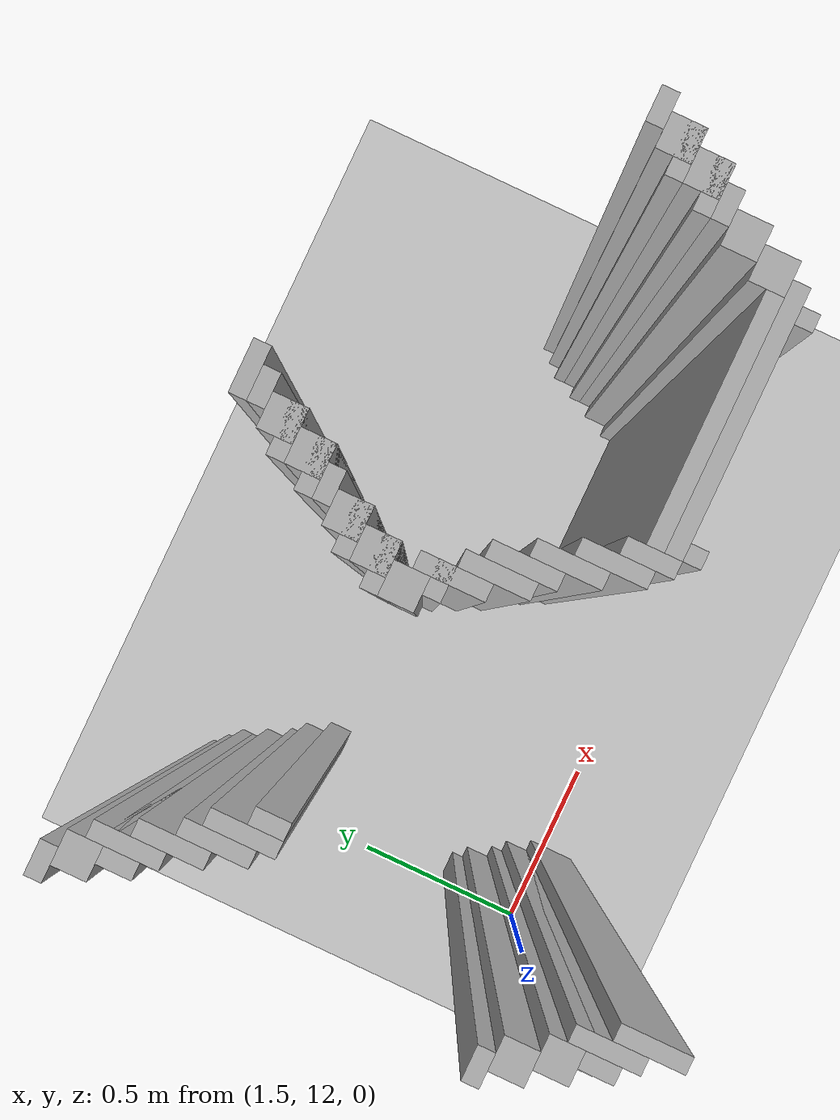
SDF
<sdf version="1.6">
 <world name="slam_world">
  <model name="ground_plane">
   <static>true</static>
   <link name="link">
    <collision name="collision">
     <geometry><plane><normal>0 0 1</normal><size>100 100</size></plane></geometry>
    </collision>
    <visual name="visual">
     <geometry><plane><normal>0 0 1</normal><size>100 100</size></plane></geometry>
     <material>
      <ambient>0.8 0.8 0.8 1</ambient>
      <diffuse>0.8 0.8 0.8 1</diffuse>
      <specular>0.8 0.8 0.8 1</specular>
     </material>
    </visual>
   </link>
  </model>
  <model name="wall_1375">
   <static>true</static>
   <pose>2.488399071925754 13.103248259860788 1.0 0 0 0</pose>
   <link name="link">
    <collision name="collision">
     <geometry><box><size>0.10440835266821345 0.03480278422273782 2.0</size></box></geometry>
    </collision>
    <visual name="visual">
     <geometry><box><size>0.10440835266821345 0.03480278422273782 2.0</size></box></geometry>
     <material><ambient>0.5 0.5 0.5 1</ambient><diffuse>0.7 0.7 0.7 1</diffuse></material>
    </visual>
   </link>
  </model>
  <model name="wall_1388">
   <static>true</static>
   <pose>1.5661252900232019 13.06844547563805 1.0 0 0 0</pose>
   <link name="link">
    <collision name="collision">
     <geometry><box><size>0.06960556844547564 0.03480278422273782 2.0</size></box></geometry>
    </collision>
    <visual name="visual">
     <geometry><box><size>0.06960556844547564 0.03480278422273782 2.0</size></box></geometry>
     <material><ambient>0.5 0.5 0.5 1</ambient><diffuse>0.7 0.7 0.7 1</diffuse></material>
    </visual>
   </link>
  </model>
  <model name="wall_1389">
   <static>true</static>
   <pose>2.470997679814385 13.06844547563805 1.0 0 0 0</pose>
   <link name="link">
    <collision name="collision">
     <geometry><box><size>0.06960556844547564 0.03480278422273782 2.0</size></box></geometry>
    </collision>
    <visual name="visual">
     <geometry><box><size>0.06960556844547564 0.03480278422273782 2.0</size></box></geometry>
     <material><ambient>0.5 0.5 0.5 1</ambient><diffuse>0.7 0.7 0.7 1</diffuse></material>
    </visual>
   </link>
  </model>
  <model name="wall_1401">
   <static>true</static>
   <pose>1.6009280742459395 13.016241299303944 1.0 0 0 0</pose>
   <link name="link">
    <collision name="collision">
     <geometry><box><size>0.06960556844547564 0.06960556844547564 2.0</size></box></geometry>
    </collision>
    <visual name="visual">
     <geometry><box><size>0.06960556844547564 0.06960556844547564 2.0</size></box></geometry>
     <material><ambient>0.5 0.5 0.5 1</ambient><diffuse>0.7 0.7 0.7 1</diffuse></material>
    </visual>
   </link>
  </model>
  <model name="wall_1402">
   <static>true</static>
   <pose>2.436194895591647 13.016241299303944 1.0 0 0 0</pose>
   <link name="link">
    <collision name="collision">
     <geometry><box><size>0.06960556844547564 0.06960556844547564 2.0</size></box></geometry>
    </collision>
    <visual name="visual">
     <geometry><box><size>0.06960556844547564 0.06960556844547564 2.0</size></box></geometry>
     <material><ambient>0.5 0.5 0.5 1</ambient><diffuse>0.7 0.7 0.7 1</diffuse></material>
    </visual>
   </link>
  </model>
  <model name="wall_1416">
   <static>true</static>
   <pose>1.6531322505800463 12.946635730858468 1.0 0 0 0</pose>
   <link name="link">
    <collision name="collision">
     <geometry><box><size>0.03480278422273782 0.13921113689095127 2.0</size></box></geometry>
    </collision>
    <visual name="visual">
     <geometry><box><size>0.03480278422273782 0.13921113689095127 2.0</size></box></geometry>
     <material><ambient>0.5 0.5 0.5 1</ambient><diffuse>0.7 0.7 0.7 1</diffuse></material>
    </visual>
   </link>
  </model>
  <model name="wall_1417">
   <static>true</static>
   <pose>2.4187935034802783 12.998839907192576 1.0 0 0 0</pose>
   <link name="link">
    <collision name="collision">
     <geometry><box><size>0.10440835266821345 0.03480278422273782 2.0</size></box></geometry>
    </collision>
    <visual name="visual">
     <geometry><box><size>0.10440835266821345 0.03480278422273782 2.0</size></box></geometry>
     <material><ambient>0.5 0.5 0.5 1</ambient><diffuse>0.7 0.7 0.7 1</diffuse></material>
    </visual>
   </link>
  </model>
  <model name="wall_1431">
   <static>true</static>
   <pose>1.6357308584686774 12.946635730858468 1.0 0 0 0</pose>
   <link name="link">
    <collision name="collision">
     <geometry><box><size>0.06960556844547564 0.06960556844547564 2.0</size></box></geometry>
    </collision>
    <visual name="visual">
     <geometry><box><size>0.06960556844547564 0.06960556844547564 2.0</size></box></geometry>
     <material><ambient>0.5 0.5 0.5 1</ambient><diffuse>0.7 0.7 0.7 1</diffuse></material>
    </visual>
   </link>
  </model>
  <model name="wall_1432">
   <static>true</static>
   <pose>2.4013921113689096 12.946635730858468 1.0 0 0 0</pose>
   <link name="link">
    <collision name="collision">
     <geometry><box><size>0.06960556844547564 0.06960556844547564 2.0</size></box></geometry>
    </collision>
    <visual name="visual">
     <geometry><box><size>0.06960556844547564 0.06960556844547564 2.0</size></box></geometry>
     <material><ambient>0.5 0.5 0.5 1</ambient><diffuse>0.7 0.7 0.7 1</diffuse></material>
    </visual>
   </link>
  </model>
  <model name="wall_1446">
   <static>true</static>
   <pose>1.6879350348027842 12.877030162412993 1.0 0 0 0</pose>
   <link name="link">
    <collision name="collision">
     <geometry><box><size>0.03480278422273782 0.13921113689095127 2.0</size></box></geometry>
    </collision>
    <visual name="visual">
     <geometry><box><size>0.03480278422273782 0.13921113689095127 2.0</size></box></geometry>
     <material><ambient>0.5 0.5 0.5 1</ambient><diffuse>0.7 0.7 0.7 1</diffuse></material>
    </visual>
   </link>
  </model>
  <model name="wall_1447">
   <static>true</static>
   <pose>2.3839907192575405 12.929234338747099 1.0 0 0 0</pose>
   <link name="link">
    <collision name="collision">
     <geometry><box><size>0.10440835266821345 0.03480278422273782 2.0</size></box></geometry>
    </collision>
    <visual name="visual">
     <geometry><box><size>0.10440835266821345 0.03480278422273782 2.0</size></box></geometry>
     <material><ambient>0.5 0.5 0.5 1</ambient><diffuse>0.7 0.7 0.7 1</diffuse></material>
    </visual>
   </link>
  </model>
  <model name="wall_1460">
   <static>true</static>
   <pose>2.3665893271461718 12.894431554524362 1.0 0 0 0</pose>
   <link name="link">
    <collision name="collision">
     <geometry><box><size>0.06960556844547564 0.03480278422273782 2.0</size></box></geometry>
    </collision>
    <visual name="visual">
     <geometry><box><size>0.06960556844547564 0.03480278422273782 2.0</size></box></geometry>
     <material><ambient>0.5 0.5 0.5 1</ambient><diffuse>0.7 0.7 0.7 1</diffuse></material>
    </visual>
   </link>
  </model>
  <model name="wall_1469">
   <static>true</static>
   <pose>1.722737819025522 12.807424593967516 1.0 0 0 0</pose>
   <link name="link">
    <collision name="collision">
     <geometry><box><size>0.03480278422273782 0.13921113689095127 2.0</size></box></geometry>
    </collision>
    <visual name="visual">
     <geometry><box><size>0.03480278422273782 0.13921113689095127 2.0</size></box></geometry>
     <material><ambient>0.5 0.5 0.5 1</ambient><diffuse>0.7 0.7 0.7 1</diffuse></material>
    </visual>
   </link>
  </model>
  <model name="wall_1470">
   <static>true</static>
   <pose>2.331786542923434 12.842227378190255 1.0 0 0 0</pose>
   <link name="link">
    <collision name="collision">
     <geometry><box><size>0.06960556844547564 0.06960556844547564 2.0</size></box></geometry>
    </collision>
    <visual name="visual">
     <geometry><box><size>0.06960556844547564 0.06960556844547564 2.0</size></box></geometry>
     <material><ambient>0.5 0.5 0.5 1</ambient><diffuse>0.7 0.7 0.7 1</diffuse></material>
    </visual>
   </link>
  </model>
  <model name="wall_1484">
   <static>true</static>
   <pose>1.75754060324826 12.772621809744779 1.0 0 0 0</pose>
   <link name="link">
    <collision name="collision">
     <geometry><box><size>0.03480278422273782 0.13921113689095127 2.0</size></box></geometry>
    </collision>
    <visual name="visual">
     <geometry><box><size>0.03480278422273782 0.13921113689095127 2.0</size></box></geometry>
     <material><ambient>0.5 0.5 0.5 1</ambient><diffuse>0.7 0.7 0.7 1</diffuse></material>
    </visual>
   </link>
  </model>
  <model name="wall_1485">
   <static>true</static>
   <pose>2.3143851508120648 12.824825986078885 1.0 0 0 0</pose>
   <link name="link">
    <collision name="collision">
     <geometry><box><size>0.10440835266821345 0.03480278422273782 2.0</size></box></geometry>
    </collision>
    <visual name="visual">
     <geometry><box><size>0.10440835266821345 0.03480278422273782 2.0</size></box></geometry>
     <material><ambient>0.5 0.5 0.5 1</ambient><diffuse>0.7 0.7 0.7 1</diffuse></material>
    </visual>
   </link>
  </model>
  <model name="wall_1498">
   <static>true</static>
   <pose>2.296983758700696 12.772621809744779 1.0 0 0 0</pose>
   <link name="link">
    <collision name="collision">
     <geometry><box><size>0.06960556844547564 0.06960556844547564 2.0</size></box></geometry>
    </collision>
    <visual name="visual">
     <geometry><box><size>0.06960556844547564 0.06960556844547564 2.0</size></box></geometry>
     <material><ambient>0.5 0.5 0.5 1</ambient><diffuse>0.7 0.7 0.7 1</diffuse></material>
    </visual>
   </link>
  </model>
  <model name="wall_1507">
   <static>true</static>
   <pose>1.7923433874709975 12.737819025522041 1.0 0 0 0</pose>
   <link name="link">
    <collision name="collision">
     <geometry><box><size>0.03480278422273782 0.06960556844547564 2.0</size></box></geometry>
    </collision>
    <visual name="visual">
     <geometry><box><size>0.03480278422273782 0.06960556844547564 2.0</size></box></geometry>
     <material><ambient>0.5 0.5 0.5 1</ambient><diffuse>0.7 0.7 0.7 1</diffuse></material>
    </visual>
   </link>
  </model>
  <model name="wall_1508">
   <static>true</static>
   <pose>2.279582366589327 12.75522041763341 1.0 0 0 0</pose>
   <link name="link">
    <collision name="collision">
     <geometry><box><size>0.10440835266821345 0.03480278422273782 2.0</size></box></geometry>
    </collision>
    <visual name="visual">
     <geometry><box><size>0.10440835266821345 0.03480278422273782 2.0</size></box></geometry>
     <material><ambient>0.5 0.5 0.5 1</ambient><diffuse>0.7 0.7 0.7 1</diffuse></material>
    </visual>
   </link>
  </model>
  <model name="wall_1521">
   <static>true</static>
   <pose>2.262180974477958 12.703016241299304 1.0 0 0 0</pose>
   <link name="link">
    <collision name="collision">
     <geometry><box><size>0.06960556844547564 0.06960556844547564 2.0</size></box></geometry>
    </collision>
    <visual name="visual">
     <geometry><box><size>0.06960556844547564 0.06960556844547564 2.0</size></box></geometry>
     <material><ambient>0.5 0.5 0.5 1</ambient><diffuse>0.7 0.7 0.7 1</diffuse></material>
    </visual>
   </link>
  </model>
  <model name="wall_1531">
   <static>true</static>
   <pose>2.3143851508120648 12.633410672853827 1.0 0 0 0</pose>
   <link name="link">
    <collision name="collision">
     <geometry><box><size>0.03480278422273782 0.13921113689095127 2.0</size></box></geometry>
    </collision>
    <visual name="visual">
     <geometry><box><size>0.03480278422273782 0.13921113689095127 2.0</size></box></geometry>
     <material><ambient>0.5 0.5 0.5 1</ambient><diffuse>0.7 0.7 0.7 1</diffuse></material>
    </visual>
   </link>
  </model>
  <model name="wall_1544">
   <static>true</static>
   <pose>2.296983758700696 12.650812064965196 1.0 0 0 0</pose>
   <link name="link">
    <collision name="collision">
     <geometry><box><size>0.06960556844547564 0.03480278422273782 2.0</size></box></geometry>
    </collision>
    <visual name="visual">
     <geometry><box><size>0.06960556844547564 0.03480278422273782 2.0</size></box></geometry>
     <material><ambient>0.5 0.5 0.5 1</ambient><diffuse>0.7 0.7 0.7 1</diffuse></material>
    </visual>
   </link>
  </model>
  <model name="wall_1545">
   <static>true</static>
   <pose>3.201856148491879 12.650812064965196 1.0 0 0 0</pose>
   <link name="link">
    <collision name="collision">
     <geometry><box><size>0.06960556844547564 0.03480278422273782 2.0</size></box></geometry>
    </collision>
    <visual name="visual">
     <geometry><box><size>0.06960556844547564 0.03480278422273782 2.0</size></box></geometry>
     <material><ambient>0.5 0.5 0.5 1</ambient><diffuse>0.7 0.7 0.7 1</diffuse></material>
    </visual>
   </link>
  </model>
  <model name="wall_1556">
   <static>true</static>
   <pose>2.3491879350348026 12.563805104408353 1.0 0 0 0</pose>
   <link name="link">
    <collision name="collision">
     <geometry><box><size>0.03480278422273782 0.13921113689095127 2.0</size></box></geometry>
    </collision>
    <visual name="visual">
     <geometry><box><size>0.03480278422273782 0.13921113689095127 2.0</size></box></geometry>
     <material><ambient>0.5 0.5 0.5 1</ambient><diffuse>0.7 0.7 0.7 1</diffuse></material>
    </visual>
   </link>
  </model>
  <model name="wall_1557">
   <static>true</static>
   <pose>3.167053364269141 12.59860788863109 1.0 0 0 0</pose>
   <link name="link">
    <collision name="collision">
     <geometry><box><size>0.06960556844547564 0.06960556844547564 2.0</size></box></geometry>
    </collision>
    <visual name="visual">
     <geometry><box><size>0.06960556844547564 0.06960556844547564 2.0</size></box></geometry>
     <material><ambient>0.5 0.5 0.5 1</ambient><diffuse>0.7 0.7 0.7 1</diffuse></material>
    </visual>
   </link>
  </model>
  <model name="wall_1569">
   <static>true</static>
   <pose>2.3839907192575405 12.529002320185615 1.0 0 0 0</pose>
   <link name="link">
    <collision name="collision">
     <geometry><box><size>0.03480278422273782 0.13921113689095127 2.0</size></box></geometry>
    </collision>
    <visual name="visual">
     <geometry><box><size>0.03480278422273782 0.13921113689095127 2.0</size></box></geometry>
     <material><ambient>0.5 0.5 0.5 1</ambient><diffuse>0.7 0.7 0.7 1</diffuse></material>
    </visual>
   </link>
  </model>
  <model name="wall_1570">
   <static>true</static>
   <pose>3.1496519721577725 12.581206496519721 1.0 0 0 0</pose>
   <link name="link">
    <collision name="collision">
     <geometry><box><size>0.10440835266821345 0.03480278422273782 2.0</size></box></geometry>
    </collision>
    <visual name="visual">
     <geometry><box><size>0.10440835266821345 0.03480278422273782 2.0</size></box></geometry>
     <material><ambient>0.5 0.5 0.5 1</ambient><diffuse>0.7 0.7 0.7 1</diffuse></material>
    </visual>
   </link>
  </model>
  <model name="wall_1582">
   <static>true</static>
   <pose>3.1322505800464038 12.529002320185615 1.0 0 0 0</pose>
   <link name="link">
    <collision name="collision">
     <geometry><box><size>0.06960556844547564 0.06960556844547564 2.0</size></box></geometry>
    </collision>
    <visual name="visual">
     <geometry><box><size>0.06960556844547564 0.06960556844547564 2.0</size></box></geometry>
     <material><ambient>0.5 0.5 0.5 1</ambient><diffuse>0.7 0.7 0.7 1</diffuse></material>
    </visual>
   </link>
  </model>
  <model name="wall_1593">
   <static>true</static>
   <pose>2.4187935034802783 12.459396751740138 1.0 0 0 0</pose>
   <link name="link">
    <collision name="collision">
     <geometry><box><size>0.03480278422273782 0.13921113689095127 2.0</size></box></geometry>
    </collision>
    <visual name="visual">
     <geometry><box><size>0.03480278422273782 0.13921113689095127 2.0</size></box></geometry>
     <material><ambient>0.5 0.5 0.5 1</ambient><diffuse>0.7 0.7 0.7 1</diffuse></material>
    </visual>
   </link>
  </model>
  <model name="wall_1594">
   <static>true</static>
   <pose>3.1148491879350346 12.511600928074245 1.0 0 0 0</pose>
   <link name="link">
    <collision name="collision">
     <geometry><box><size>0.10440835266821345 0.03480278422273782 2.0</size></box></geometry>
    </collision>
    <visual name="visual">
     <geometry><box><size>0.10440835266821345 0.03480278422273782 2.0</size></box></geometry>
     <material><ambient>0.5 0.5 0.5 1</ambient><diffuse>0.7 0.7 0.7 1</diffuse></material>
    </visual>
   </link>
  </model>
  <model name="wall_1606">
   <static>true</static>
   <pose>3.097447795823666 12.476798143851507 1.0 0 0 0</pose>
   <link name="link">
    <collision name="collision">
     <geometry><box><size>0.06960556844547564 0.03480278422273782 2.0</size></box></geometry>
    </collision>
    <visual name="visual">
     <geometry><box><size>0.06960556844547564 0.03480278422273782 2.0</size></box></geometry>
     <material><ambient>0.5 0.5 0.5 1</ambient><diffuse>0.7 0.7 0.7 1</diffuse></material>
    </visual>
   </link>
  </model>
  <model name="wall_1613">
   <static>true</static>
   <pose>2.453596287703016 12.389791183294664 1.0 0 0 0</pose>
   <link name="link">
    <collision name="collision">
     <geometry><box><size>0.03480278422273782 0.13921113689095127 2.0</size></box></geometry>
    </collision>
    <visual name="visual">
     <geometry><box><size>0.03480278422273782 0.13921113689095127 2.0</size></box></geometry>
     <material><ambient>0.5 0.5 0.5 1</ambient><diffuse>0.7 0.7 0.7 1</diffuse></material>
    </visual>
   </link>
  </model>
  <model name="wall_1614">
   <static>true</static>
   <pose>3.062645011600928 12.424593967517401 1.0 0 0 0</pose>
   <link name="link">
    <collision name="collision">
     <geometry><box><size>0.06960556844547564 0.06960556844547564 2.0</size></box></geometry>
    </collision>
    <visual name="visual">
     <geometry><box><size>0.06960556844547564 0.06960556844547564 2.0</size></box></geometry>
     <material><ambient>0.5 0.5 0.5 1</ambient><diffuse>0.7 0.7 0.7 1</diffuse></material>
    </visual>
   </link>
  </model>
  <model name="wall_1626">
   <static>true</static>
   <pose>2.488399071925754 12.337587006960556 1.0 0 0 0</pose>
   <link name="link">
    <collision name="collision">
     <geometry><box><size>0.03480278422273782 0.10440835266821345 2.0</size></box></geometry>
    </collision>
    <visual name="visual">
     <geometry><box><size>0.03480278422273782 0.10440835266821345 2.0</size></box></geometry>
     <material><ambient>0.5 0.5 0.5 1</ambient><diffuse>0.7 0.7 0.7 1</diffuse></material>
    </visual>
   </link>
  </model>
  <model name="wall_1627">
   <static>true</static>
   <pose>3.02784222737819 12.354988399071924 1.0 0 0 0</pose>
   <link name="link">
    <collision name="collision">
     <geometry><box><size>0.06960556844547564 0.06960556844547564 2.0</size></box></geometry>
    </collision>
    <visual name="visual">
     <geometry><box><size>0.06960556844547564 0.06960556844547564 2.0</size></box></geometry>
     <material><ambient>0.5 0.5 0.5 1</ambient><diffuse>0.7 0.7 0.7 1</diffuse></material>
    </visual>
   </link>
  </model>
  <model name="wall_1640">
   <static>true</static>
   <pose>2.784222737819025 12.337587006960556 1.0 0 0 0</pose>
   <link name="link">
    <collision name="collision">
     <geometry><box><size>0.5568445475638051 0.03480278422273782 2.0</size></box></geometry>
    </collision>
    <visual name="visual">
     <geometry><box><size>0.5568445475638051 0.03480278422273782 2.0</size></box></geometry>
     <material><ambient>0.5 0.5 0.5 1</ambient><diffuse>0.7 0.7 0.7 1</diffuse></material>
    </visual>
   </link>
  </model>
  <model name="wall_1652">
   <static>true</static>
   <pose>2.7668213457076565 12.302784222737818 1.0 0 0 0</pose>
   <link name="link">
    <collision name="collision">
     <geometry><box><size>0.5220417633410672 0.03480278422273782 2.0</size></box></geometry>
    </collision>
    <visual name="visual">
     <geometry><box><size>0.5220417633410672 0.03480278422273782 2.0</size></box></geometry>
     <material><ambient>0.5 0.5 0.5 1</ambient><diffuse>0.7 0.7 0.7 1</diffuse></material>
    </visual>
   </link>
  </model>
  <model name="wall_1665">
   <static>true</static>
   <pose>2.523201856148492 12.267981438515081 1.0 0 0 0</pose>
   <link name="link">
    <collision name="collision">
     <geometry><box><size>0.03480278422273782 0.03480278422273782 2.0</size></box></geometry>
    </collision>
    <visual name="visual">
     <geometry><box><size>0.03480278422273782 0.03480278422273782 2.0</size></box></geometry>
     <material><ambient>0.5 0.5 0.5 1</ambient><diffuse>0.7 0.7 0.7 1</diffuse></material>
    </visual>
   </link>
  </model>
  <model name="wall_1666">
   <static>true</static>
   <pose>2.975638051044083 12.267981438515081 1.0 0 0 0</pose>
   <link name="link">
    <collision name="collision">
     <geometry><box><size>0.03480278422273782 0.03480278422273782 2.0</size></box></geometry>
    </collision>
    <visual name="visual">
     <geometry><box><size>0.03480278422273782 0.03480278422273782 2.0</size></box></geometry>
     <material><ambient>0.5 0.5 0.5 1</ambient><diffuse>0.7 0.7 0.7 1</diffuse></material>
    </visual>
   </link>
  </model>
  <model name="wall_1683">
   <static>true</static>
   <pose>1.5661252900232019 12.233178654292344 1.0 0 0 0</pose>
   <link name="link">
    <collision name="collision">
     <geometry><box><size>0.06960556844547564 0.03480278422273782 2.0</size></box></geometry>
    </collision>
    <visual name="visual">
     <geometry><box><size>0.06960556844547564 0.03480278422273782 2.0</size></box></geometry>
     <material><ambient>0.5 0.5 0.5 1</ambient><diffuse>0.7 0.7 0.7 1</diffuse></material>
    </visual>
   </link>
  </model>
  <model name="wall_1697">
   <static>true</static>
   <pose>1.6009280742459395 12.180974477958236 1.0 0 0 0</pose>
   <link name="link">
    <collision name="collision">
     <geometry><box><size>0.06960556844547564 0.06960556844547564 2.0</size></box></geometry>
    </collision>
    <visual name="visual">
     <geometry><box><size>0.06960556844547564 0.06960556844547564 2.0</size></box></geometry>
     <material><ambient>0.5 0.5 0.5 1</ambient><diffuse>0.7 0.7 0.7 1</diffuse></material>
    </visual>
   </link>
  </model>
  <model name="wall_1711">
   <static>true</static>
   <pose>1.6357308584686774 12.11136890951276 1.0 0 0 0</pose>
   <link name="link">
    <collision name="collision">
     <geometry><box><size>0.06960556844547564 0.06960556844547564 2.0</size></box></geometry>
    </collision>
    <visual name="visual">
     <geometry><box><size>0.06960556844547564 0.06960556844547564 2.0</size></box></geometry>
     <material><ambient>0.5 0.5 0.5 1</ambient><diffuse>0.7 0.7 0.7 1</diffuse></material>
    </visual>
   </link>
  </model>
  <model name="wall_1725">
   <static>true</static>
   <pose>1.6879350348027842 12.041763341067284 1.0 0 0 0</pose>
   <link name="link">
    <collision name="collision">
     <geometry><box><size>0.03480278422273782 0.13921113689095127 2.0</size></box></geometry>
    </collision>
    <visual name="visual">
     <geometry><box><size>0.03480278422273782 0.13921113689095127 2.0</size></box></geometry>
     <material><ambient>0.5 0.5 0.5 1</ambient><diffuse>0.7 0.7 0.7 1</diffuse></material>
    </visual>
   </link>
  </model>
  <model name="wall_1738">
   <static>true</static>
   <pose>1.6705336426914152 12.041763341067284 1.0 0 0 0</pose>
   <link name="link">
    <collision name="collision">
     <geometry><box><size>0.06960556844547564 0.06960556844547564 2.0</size></box></geometry>
    </collision>
    <visual name="visual">
     <geometry><box><size>0.06960556844547564 0.06960556844547564 2.0</size></box></geometry>
     <material><ambient>0.5 0.5 0.5 1</ambient><diffuse>0.7 0.7 0.7 1</diffuse></material>
    </visual>
   </link>
  </model>
  <model name="wall_1749">
   <static>true</static>
   <pose>1.722737819025522 11.97215777262181 1.0 0 0 0</pose>
   <link name="link">
    <collision name="collision">
     <geometry><box><size>0.03480278422273782 0.13921113689095127 2.0</size></box></geometry>
    </collision>
    <visual name="visual">
     <geometry><box><size>0.03480278422273782 0.13921113689095127 2.0</size></box></geometry>
     <material><ambient>0.5 0.5 0.5 1</ambient><diffuse>0.7 0.7 0.7 1</diffuse></material>
    </visual>
   </link>
  </model>
 </world>
</sdf>
